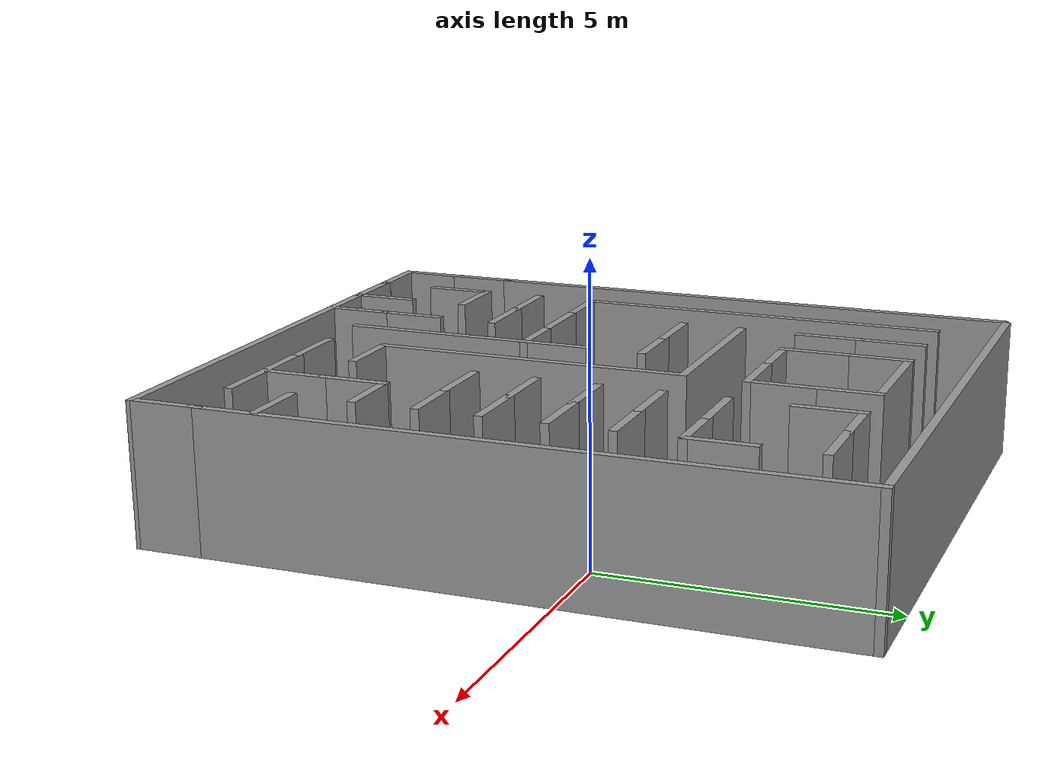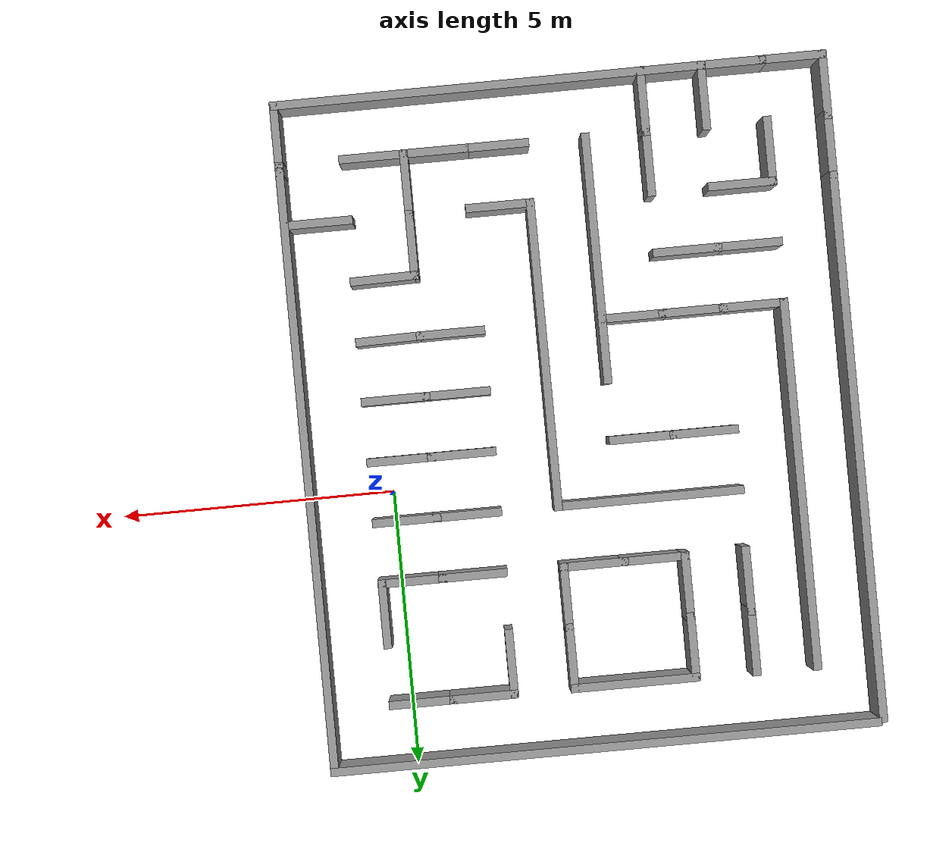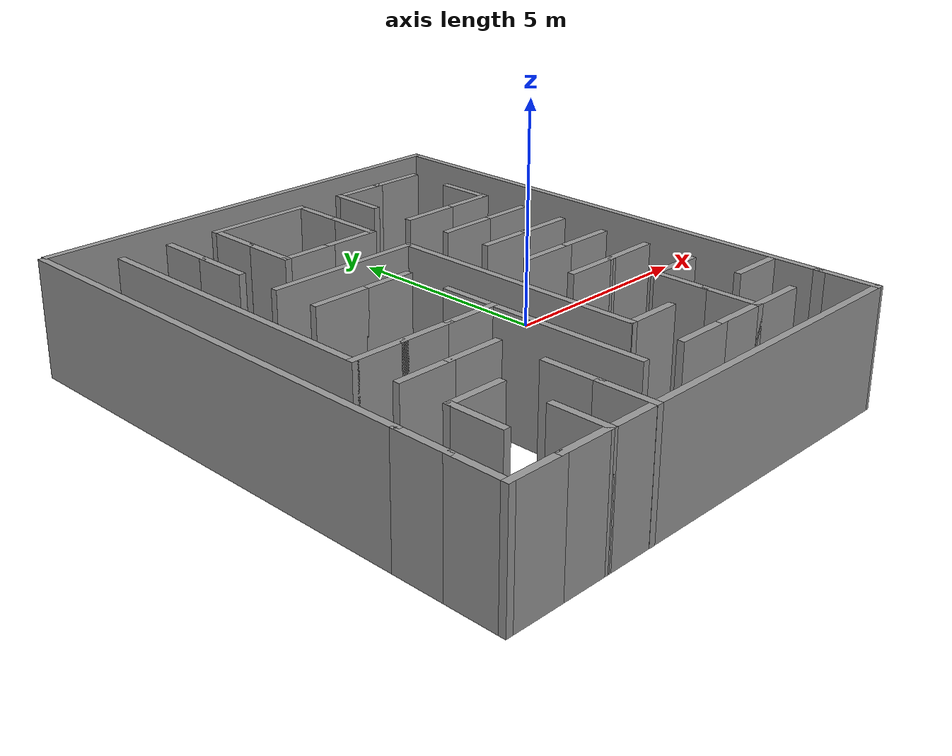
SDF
<?xml version='1.0'?>
<sdf version='1.7'>
  <model name='Pacturtle'>
    <pose>-3.48692 -1.13593 0 0 -0 0</pose>
    <link name='Wall_115'>
      <collision name='Wall_115_Collision'>
        <geometry>
          <box>
            <size>1.25 0.15 2.5</size>
          </box>
        </geometry>
        <pose>0 0 1.25 0 -0 0</pose>
      </collision>
      <visual name='Wall_115_Visual'>
        <pose>0 0 1.25 0 -0 0</pose>
        <geometry>
          <box>
            <size>1.25 0.15 2.5</size>
          </box>
        </geometry>
        <material>
          <script>
            <uri>file://media/materials/scripts/gazebo.material</uri>
            <name>Gazebo/Grey</name>
          </script>
          <ambient>1 1 1 1</ambient>
        </material>
        <meta>
          <layer>0</layer>
        </meta>
      </visual>
      <pose>-1.68082 4.39611 0 0 -0 -1.5708</pose>
    </link>
    <link name='Wall_116'>
      <collision name='Wall_116_Collision'>
        <geometry>
          <box>
            <size>1.25 0.15 2.5</size>
          </box>
        </geometry>
        <pose>0 0 1.25 0 -0 0</pose>
      </collision>
      <visual name='Wall_116_Visual'>
        <pose>0 0 1.25 0 -0 0</pose>
        <geometry>
          <box>
            <size>1.25 0.15 2.5</size>
          </box>
        </geometry>
        <material>
          <script>
            <uri>file://media/materials/scripts/gazebo.material</uri>
            <name>Gazebo/Grey</name>
          </script>
          <ambient>1 1 1 1</ambient>
        </material>
        <meta>
          <layer>0</layer>
        </meta>
      </visual>
      <pose>-1.68082 3.29611 0 0 -0 -1.5708</pose>
    </link>
    <link name='Wall_119'>
      <collision name='Wall_119_Collision'>
        <geometry>
          <box>
            <size>1.25 0.15 2.5</size>
          </box>
        </geometry>
        <pose>0 0 1.25 0 -0 0</pose>
      </collision>
      <visual name='Wall_119_Visual'>
        <pose>0 0 1.25 0 -0 0</pose>
        <geometry>
          <box>
            <size>1.25 0.15 2.5</size>
          </box>
        </geometry>
        <material>
          <script>
            <uri>file://media/materials/scripts/gazebo.material</uri>
            <name>Gazebo/Grey</name>
          </script>
          <ambient>1 1 1 1</ambient>
        </material>
        <meta>
          <layer>0</layer>
        </meta>
      </visual>
      <pose>3.26918 1.64611 0 0 -0 3.14159</pose>
    </link>
    <link name='Wall_120'>
      <collision name='Wall_120_Collision'>
        <geometry>
          <box>
            <size>1.25 0.15 2.5</size>
          </box>
        </geometry>
        <pose>0 0 1.25 0 -0 0</pose>
      </collision>
      <visual name='Wall_120_Visual'>
        <pose>0 0 1.25 0 -0 0</pose>
        <geometry>
          <box>
            <size>1.25 0.15 2.5</size>
          </box>
        </geometry>
        <material>
          <script>
            <uri>file://media/materials/scripts/gazebo.material</uri>
            <name>Gazebo/Grey</name>
          </script>
          <ambient>1 1 1 1</ambient>
        </material>
        <meta>
          <layer>0</layer>
        </meta>
      </visual>
      <pose>2.16918 1.64611 0 0 -0 3.14159</pose>
    </link>
    <link name='Wall_122'>
      <collision name='Wall_122_Collision'>
        <geometry>
          <box>
            <size>1.25 0.15 2.5</size>
          </box>
        </geometry>
        <pose>0 0 1.25 0 -0 0</pose>
      </collision>
      <visual name='Wall_122_Visual'>
        <pose>0 0 1.25 0 -0 0</pose>
        <geometry>
          <box>
            <size>1.25 0.15 2.5</size>
          </box>
        </geometry>
        <material>
          <script>
            <uri>file://media/materials/scripts/gazebo.material</uri>
            <name>Gazebo/Grey</name>
          </script>
          <ambient>1 1 1 1</ambient>
        </material>
        <meta>
          <layer>0</layer>
        </meta>
      </visual>
      <pose>2.16918 0.546111 0 0 -0 0</pose>
    </link>
    <link name='Wall_123'>
      <collision name='Wall_123_Collision'>
        <geometry>
          <box>
            <size>1.25 0.15 2.5</size>
          </box>
        </geometry>
        <pose>0 0 1.25 0 -0 0</pose>
      </collision>
      <visual name='Wall_123_Visual'>
        <pose>0 0 1.25 0 -0 0</pose>
        <geometry>
          <box>
            <size>1.25 0.15 2.5</size>
          </box>
        </geometry>
        <material>
          <script>
            <uri>file://media/materials/scripts/gazebo.material</uri>
            <name>Gazebo/Grey</name>
          </script>
          <ambient>1 1 1 1</ambient>
        </material>
        <meta>
          <layer>0</layer>
        </meta>
      </visual>
      <pose>3.26918 0.546111 0 0 -0 0</pose>
    </link>
    <link name='Wall_128'>
      <collision name='Wall_128_Collision'>
        <geometry>
          <box>
            <size>1.25 0.15 2.5</size>
          </box>
        </geometry>
        <pose>0 0 1.25 0 -0 0</pose>
      </collision>
      <visual name='Wall_128_Visual'>
        <pose>0 0 1.25 0 -0 0</pose>
        <geometry>
          <box>
            <size>1.25 0.15 2.5</size>
          </box>
        </geometry>
        <material>
          <script>
            <uri>file://media/materials/scripts/gazebo.material</uri>
            <name>Gazebo/Grey</name>
          </script>
          <ambient>1 1 1 1</ambient>
        </material>
        <meta>
          <layer>0</layer>
        </meta>
      </visual>
      <pose>3.26918 -0.553889 0 0 -0 3.14159</pose>
    </link>
    <link name='Wall_129'>
      <collision name='Wall_129_Collision'>
        <geometry>
          <box>
            <size>1.25 0.15 2.5</size>
          </box>
        </geometry>
        <pose>0 0 1.25 0 -0 0</pose>
      </collision>
      <visual name='Wall_129_Visual'>
        <pose>0 0 1.25 0 -0 0</pose>
        <geometry>
          <box>
            <size>1.25 0.15 2.5</size>
          </box>
        </geometry>
        <material>
          <script>
            <uri>file://media/materials/scripts/gazebo.material</uri>
            <name>Gazebo/Grey</name>
          </script>
          <ambient>1 1 1 1</ambient>
        </material>
        <meta>
          <layer>0</layer>
        </meta>
      </visual>
      <pose>2.16918 -0.553889 0 0 -0 3.14159</pose>
    </link>
    <link name='Wall_131'>
      <collision name='Wall_131_Collision'>
        <geometry>
          <box>
            <size>1.25 0.15 2.5</size>
          </box>
        </geometry>
        <pose>0 0 1.25 0 -0 0</pose>
      </collision>
      <visual name='Wall_131_Visual'>
        <pose>0 0 1.25 0 -0 0</pose>
        <geometry>
          <box>
            <size>1.25 0.15 2.5</size>
          </box>
        </geometry>
        <material>
          <script>
            <uri>file://media/materials/scripts/gazebo.material</uri>
            <name>Gazebo/Grey</name>
          </script>
          <ambient>1 1 1 1</ambient>
        </material>
        <meta>
          <layer>0</layer>
        </meta>
      </visual>
      <pose>2.16918 -1.65389 0 0 -0 0</pose>
    </link>
    <link name='Wall_132'>
      <collision name='Wall_132_Collision'>
        <geometry>
          <box>
            <size>1.25 0.15 2.5</size>
          </box>
        </geometry>
        <pose>0 0 1.25 0 -0 0</pose>
      </collision>
      <visual name='Wall_132_Visual'>
        <pose>0 0 1.25 0 -0 0</pose>
        <geometry>
          <box>
            <size>1.25 0.15 2.5</size>
          </box>
        </geometry>
        <material>
          <script>
            <uri>file://media/materials/scripts/gazebo.material</uri>
            <name>Gazebo/Grey</name>
          </script>
          <ambient>1 1 1 1</ambient>
        </material>
        <meta>
          <layer>0</layer>
        </meta>
      </visual>
      <pose>3.26918 -1.64519 0 0 -0 0.015809</pose>
    </link>
    <link name='Wall_135'>
      <collision name='Wall_135_Collision'>
        <geometry>
          <box>
            <size>1.25 0.15 2.5</size>
          </box>
        </geometry>
        <pose>0 0 1.25 0 -0 0</pose>
      </collision>
      <visual name='Wall_135_Visual'>
        <pose>0 0 1.25 0 -0 0</pose>
        <geometry>
          <box>
            <size>1.25 0.15 2.5</size>
          </box>
        </geometry>
        <material>
          <script>
            <uri>file://media/materials/scripts/gazebo.material</uri>
            <name>Gazebo/Grey</name>
          </script>
          <ambient>1 1 1 1</ambient>
        </material>
        <meta>
          <layer>0</layer>
        </meta>
      </visual>
      <pose>3.26918 -2.74519 0 0 -0 -3.12578</pose>
    </link>
    <link name='Wall_137'>
      <collision name='Wall_137_Collision'>
        <geometry>
          <box>
            <size>1.25 0.15 2.5</size>
          </box>
        </geometry>
        <pose>0 0 1.25 0 -0 0</pose>
      </collision>
      <visual name='Wall_137_Visual'>
        <pose>0 0 1.25 0 -0 0</pose>
        <geometry>
          <box>
            <size>1.25 0.15 2.5</size>
          </box>
        </geometry>
        <material>
          <script>
            <uri>file://media/materials/scripts/gazebo.material</uri>
            <name>Gazebo/Grey</name>
          </script>
          <ambient>1 1 1 1</ambient>
        </material>
        <meta>
          <layer>0</layer>
        </meta>
      </visual>
      <pose>2.71918 -3.30389 0 0 -0 -1.5708</pose>
    </link>
    <link name='Wall_138'>
      <collision name='Wall_138_Collision'>
        <geometry>
          <box>
            <size>1.25 0.15 2.5</size>
          </box>
        </geometry>
        <pose>0 0 1.25 0 -0 0</pose>
      </collision>
      <visual name='Wall_138_Visual'>
        <pose>0 0 1.25 0 -0 0</pose>
        <geometry>
          <box>
            <size>1.25 0.15 2.5</size>
          </box>
        </geometry>
        <material>
          <script>
            <uri>file://media/materials/scripts/gazebo.material</uri>
            <name>Gazebo/Grey</name>
          </script>
          <ambient>1 1 1 1</ambient>
        </material>
        <meta>
          <layer>0</layer>
        </meta>
      </visual>
      <pose>2.71918 -4.40389 0 0 -0 -1.5708</pose>
    </link>
    <link name='Wall_139'>
      <collision name='Wall_139_Collision'>
        <geometry>
          <box>
            <size>1.25 0.15 2.5</size>
          </box>
        </geometry>
        <pose>0 0 1.25 0 -0 0</pose>
      </collision>
      <visual name='Wall_139_Visual'>
        <pose>0 0 1.25 0 -0 0</pose>
        <geometry>
          <box>
            <size>1.25 0.15 2.5</size>
          </box>
        </geometry>
        <material>
          <script>
            <uri>file://media/materials/scripts/gazebo.material</uri>
            <name>Gazebo/Grey</name>
          </script>
          <ambient>1 1 1 1</ambient>
        </material>
        <meta>
          <layer>0</layer>
        </meta>
      </visual>
      <pose>3.26918 -4.95389 0 0 -0 0</pose>
    </link>
    <link name='Wall_141'>
      <collision name='Wall_141_Collision'>
        <geometry>
          <box>
            <size>1.25 0.15 2.5</size>
          </box>
        </geometry>
        <pose>0 0 1.25 0 -0 0</pose>
      </collision>
      <visual name='Wall_141_Visual'>
        <pose>0 0 1.25 0 -0 0</pose>
        <geometry>
          <box>
            <size>1.25 0.15 2.5</size>
          </box>
        </geometry>
        <material>
          <script>
            <uri>file://media/materials/scripts/gazebo.material</uri>
            <name>Gazebo/Grey</name>
          </script>
          <ambient>1 1 1 1</ambient>
        </material>
        <meta>
          <layer>0</layer>
        </meta>
      </visual>
      <pose>4.36918 -3.85389 0 0 -0 0</pose>
    </link>
    <link name='Wall_143'>
      <collision name='Wall_143_Collision'>
        <geometry>
          <box>
            <size>1.25 0.15 2.5</size>
          </box>
        </geometry>
        <pose>0 0 1.25 0 -0 0</pose>
      </collision>
      <visual name='Wall_143_Visual'>
        <pose>0 0 1.25 0 -0 0</pose>
        <geometry>
          <box>
            <size>1.25 0.15 2.5</size>
          </box>
        </geometry>
        <material>
          <script>
            <uri>file://media/materials/scripts/gazebo.material</uri>
            <name>Gazebo/Grey</name>
          </script>
          <ambient>1 1 1 1</ambient>
        </material>
        <meta>
          <layer>0</layer>
        </meta>
      </visual>
      <pose>2.16918 -4.95389 0 0 -0 3.14159</pose>
    </link>
    <link name='Wall_145'>
      <collision name='Wall_145_Collision'>
        <geometry>
          <box>
            <size>0.25 0.15 2.5</size>
          </box>
        </geometry>
        <pose>0 0 1.25 0 -0 0</pose>
      </collision>
      <visual name='Wall_145_Visual'>
        <pose>0 0 1.25 0 -0 0</pose>
        <geometry>
          <box>
            <size>0.25 0.15 2.5</size>
          </box>
        </geometry>
        <material>
          <script>
            <uri>file://media/materials/scripts/gazebo.material</uri>
            <name>Gazebo/Grey</name>
          </script>
          <ambient>1 1 1 1</ambient>
        </material>
        <meta>
          <layer>0</layer>
        </meta>
      </visual>
      <pose>4.9806 -4.88067 0 0 -0 -1.5708</pose>
    </link>
    <link name='Wall_146'>
      <collision name='Wall_146_Collision'>
        <geometry>
          <box>
            <size>1.25 0.15 2.5</size>
          </box>
        </geometry>
        <pose>0 0 1.25 0 -0 0</pose>
      </collision>
      <visual name='Wall_146_Visual'>
        <pose>0 0 1.25 0 -0 0</pose>
        <geometry>
          <box>
            <size>1.25 0.15 2.5</size>
          </box>
        </geometry>
        <material>
          <script>
            <uri>file://media/materials/scripts/gazebo.material</uri>
            <name>Gazebo/Grey</name>
          </script>
          <ambient>1 1 1 1</ambient>
        </material>
        <meta>
          <layer>0</layer>
        </meta>
      </visual>
      <pose>4.9806 -5.48067 0 0 -0 -1.5708</pose>
    </link>
    <link name='Wall_148'>
      <collision name='Wall_148_Collision'>
        <geometry>
          <box>
            <size>1.25 0.15 2.5</size>
          </box>
        </geometry>
        <pose>0 0 1.25 0 -0 0</pose>
      </collision>
      <visual name='Wall_148_Visual'>
        <pose>0 0 1.25 0 -0 0</pose>
        <geometry>
          <box>
            <size>1.25 0.15 2.5</size>
          </box>
        </geometry>
        <material>
          <script>
            <uri>file://media/materials/scripts/gazebo.material</uri>
            <name>Gazebo/Grey</name>
          </script>
          <ambient>1 1 1 1</ambient>
        </material>
        <meta>
          <layer>0</layer>
        </meta>
      </visual>
      <pose>2.16918 4.94611 0 0 -0 3.14159</pose>
    </link>
    <link name='Wall_149'>
      <collision name='Wall_149_Collision'>
        <geometry>
          <box>
            <size>1.25 0.15 2.5</size>
          </box>
        </geometry>
        <pose>0 0 1.25 0 -0 0</pose>
      </collision>
      <visual name='Wall_149_Visual'>
        <pose>0 0 1.25 0 -0 0</pose>
        <geometry>
          <box>
            <size>1.25 0.15 2.5</size>
          </box>
        </geometry>
        <material>
          <script>
            <uri>file://media/materials/scripts/gazebo.material</uri>
            <name>Gazebo/Grey</name>
          </script>
          <ambient>1 1 1 1</ambient>
        </material>
        <meta>
          <layer>0</layer>
        </meta>
      </visual>
      <pose>1.61918 4.39611 0 0 -0 -1.5708</pose>
    </link>
    <link name='Wall_151'>
      <collision name='Wall_151_Collision'>
        <geometry>
          <box>
            <size>1.25 0.15 2.5</size>
          </box>
        </geometry>
        <pose>0 0 1.25 0 -0 0</pose>
      </collision>
      <visual name='Wall_151_Visual'>
        <pose>0 0 1.25 0 -0 0</pose>
        <geometry>
          <box>
            <size>1.25 0.15 2.5</size>
          </box>
        </geometry>
        <material>
          <script>
            <uri>file://media/materials/scripts/gazebo.material</uri>
            <name>Gazebo/Grey</name>
          </script>
          <ambient>1 1 1 1</ambient>
        </material>
        <meta>
          <layer>0</layer>
        </meta>
      </visual>
      <pose>2.16918 2.74611 0 0 -0 3.14159</pose>
    </link>
    <link name='Wall_154'>
      <collision name='Wall_154_Collision'>
        <geometry>
          <box>
            <size>1.25 0.15 2.5</size>
          </box>
        </geometry>
        <pose>0 0 1.25 0 -0 0</pose>
      </collision>
      <visual name='Wall_154_Visual'>
        <pose>0 0 1.25 0 -0 0</pose>
        <geometry>
          <box>
            <size>1.25 0.15 2.5</size>
          </box>
        </geometry>
        <material>
          <script>
            <uri>file://media/materials/scripts/gazebo.material</uri>
            <name>Gazebo/Grey</name>
          </script>
          <ambient>1 1 1 1</ambient>
        </material>
        <meta>
          <layer>0</layer>
        </meta>
      </visual>
      <pose>0.519179 4.39611 0 0 -0 -1.5708</pose>
    </link>
    <link name='Wall_155'>
      <collision name='Wall_155_Collision'>
        <geometry>
          <box>
            <size>1.25 0.15 2.5</size>
          </box>
        </geometry>
        <pose>0 0 1.25 0 -0 0</pose>
      </collision>
      <visual name='Wall_155_Visual'>
        <pose>0 0 1.25 0 -0 0</pose>
        <geometry>
          <box>
            <size>1.25 0.15 2.5</size>
          </box>
        </geometry>
        <material>
          <script>
            <uri>file://media/materials/scripts/gazebo.material</uri>
            <name>Gazebo/Grey</name>
          </script>
          <ambient>1 1 1 1</ambient>
        </material>
        <meta>
          <layer>0</layer>
        </meta>
      </visual>
      <pose>0.519179 3.29611 0 0 -0 -1.5708</pose>
    </link>
    <link name='Wall_156'>
      <collision name='Wall_156_Collision'>
        <geometry>
          <box>
            <size>1.25 0.15 2.5</size>
          </box>
        </geometry>
        <pose>0 0 1.25 0 -0 0</pose>
      </collision>
      <visual name='Wall_156_Visual'>
        <pose>0 0 1.25 0 -0 0</pose>
        <geometry>
          <box>
            <size>1.25 0.15 2.5</size>
          </box>
        </geometry>
        <material>
          <script>
            <uri>file://media/materials/scripts/gazebo.material</uri>
            <name>Gazebo/Grey</name>
          </script>
          <ambient>1 1 1 1</ambient>
        </material>
        <meta>
          <layer>0</layer>
        </meta>
      </visual>
      <pose>-0.030821 2.74611 0 0 -0 3.14159</pose>
    </link>
    <link name='Wall_157'>
      <collision name='Wall_157_Collision'>
        <geometry>
          <box>
            <size>1.25 0.15 2.5</size>
          </box>
        </geometry>
        <pose>0 0 1.25 0 -0 0</pose>
      </collision>
      <visual name='Wall_157_Visual'>
        <pose>0 0 1.25 0 -0 0</pose>
        <geometry>
          <box>
            <size>1.25 0.15 2.5</size>
          </box>
        </geometry>
        <material>
          <script>
            <uri>file://media/materials/scripts/gazebo.material</uri>
            <name>Gazebo/Grey</name>
          </script>
          <ambient>1 1 1 1</ambient>
        </material>
        <meta>
          <layer>0</layer>
        </meta>
      </visual>
      <pose>-1.13082 2.74611 0 0 -0 3.14159</pose>
    </link>
    <link name='Wall_159'>
      <collision name='Wall_159_Collision'>
        <geometry>
          <box>
            <size>1.25 0.15 2.5</size>
          </box>
        </geometry>
        <pose>0 0 1.25 0 -0 0</pose>
      </collision>
      <visual name='Wall_159_Visual'>
        <pose>0 0 1.25 0 -0 0</pose>
        <geometry>
          <box>
            <size>1.25 0.15 2.5</size>
          </box>
        </geometry>
        <material>
          <script>
            <uri>file://media/materials/scripts/gazebo.material</uri>
            <name>Gazebo/Grey</name>
          </script>
          <ambient>1 1 1 1</ambient>
        </material>
        <meta>
          <layer>0</layer>
        </meta>
      </visual>
      <pose>-2.78082 3.29611 0 0 -0 1.5708</pose>
    </link>
    <link name='Wall_160'>
      <collision name='Wall_160_Collision'>
        <geometry>
          <box>
            <size>1.25 0.15 2.5</size>
          </box>
        </geometry>
        <pose>0 0 1.25 0 -0 0</pose>
      </collision>
      <visual name='Wall_160_Visual'>
        <pose>0 0 1.25 0 -0 0</pose>
        <geometry>
          <box>
            <size>1.25 0.15 2.5</size>
          </box>
        </geometry>
        <material>
          <script>
            <uri>file://media/materials/scripts/gazebo.material</uri>
            <name>Gazebo/Grey</name>
          </script>
          <ambient>1 1 1 1</ambient>
        </material>
        <meta>
          <layer>0</layer>
        </meta>
      </visual>
      <pose>-2.78082 4.39611 0 0 -0 1.5708</pose>
    </link>
    <link name='Wall_162'>
      <collision name='Wall_162_Collision'>
        <geometry>
          <box>
            <size>2.35 0.15 2.5</size>
          </box>
        </geometry>
        <pose>0 0 1.25 0 -0 0</pose>
      </collision>
      <visual name='Wall_162_Visual'>
        <pose>0 0 1.25 0 -0 0</pose>
        <geometry>
          <box>
            <size>2.35 0.15 2.5</size>
          </box>
        </geometry>
        <material>
          <script>
            <uri>file://media/materials/scripts/gazebo.material</uri>
            <name>Gazebo/Grey</name>
          </script>
          <ambient>1 1 1 1</ambient>
        </material>
        <meta>
          <layer>0</layer>
        </meta>
      </visual>
      <pose>-0.580821 4.94611 0 0 -0 0</pose>
    </link>
    <link name='Wall_169'>
      <collision name='Wall_169_Collision'>
        <geometry>
          <box>
            <size>5.6615 0.15 2.5</size>
          </box>
        </geometry>
        <pose>0 0 1.25 0 -0 0</pose>
      </collision>
      <visual name='Wall_169_Visual'>
        <pose>0 0 1.25 0 -0 0</pose>
        <geometry>
          <box>
            <size>5.6615 0.15 2.5</size>
          </box>
        </geometry>
        <material>
          <script>
            <uri>file://media/materials/scripts/gazebo.material</uri>
            <name>Gazebo/Grey</name>
          </script>
          <ambient>1 1 1 1</ambient>
        </material>
        <meta>
          <layer>0</layer>
        </meta>
      </visual>
      <pose>0.519179 -1.10964 0 0 -0 -1.5708</pose>
    </link>
    <link name='Wall_174'>
      <collision name='Wall_174_Collision'>
        <geometry>
          <box>
            <size>1.25 0.15 2.5</size>
          </box>
        </geometry>
        <pose>0 0 1.25 0 -0 0</pose>
      </collision>
      <visual name='Wall_174_Visual'>
        <pose>0 0 1.25 0 -0 0</pose>
        <geometry>
          <box>
            <size>1.25 0.15 2.5</size>
          </box>
        </geometry>
        <material>
          <script>
            <uri>file://media/materials/scripts/gazebo.material</uri>
            <name>Gazebo/Grey</name>
          </script>
          <ambient>1 1 1 1</ambient>
        </material>
        <meta>
          <layer>0</layer>
        </meta>
      </visual>
      <pose>1.06918 -3.86539 0 0 -0 0</pose>
    </link>
    <link name='Wall_178'>
      <collision name='Wall_178_Collision'>
        <geometry>
          <box>
            <size>3.45 0.15 2.5</size>
          </box>
        </geometry>
        <pose>0 0 1.25 0 -0 0</pose>
      </collision>
      <visual name='Wall_178_Visual'>
        <pose>0 0 1.25 0 -0 0</pose>
        <geometry>
          <box>
            <size>3.45 0.15 2.5</size>
          </box>
        </geometry>
        <material>
          <script>
            <uri>file://media/materials/scripts/gazebo.material</uri>
            <name>Gazebo/Grey</name>
          </script>
          <ambient>1 1 1 1</ambient>
        </material>
        <meta>
          <layer>0</layer>
        </meta>
      </visual>
      <pose>-1.13082 1.64611 0 0 -0 0</pose>
    </link>
    <link name='Wall_181'>
      <collision name='Wall_181_Collision'>
        <geometry>
          <box>
            <size>1.25 0.15 2.5</size>
          </box>
        </geometry>
        <pose>0 0 1.25 0 -0 0</pose>
      </collision>
      <visual name='Wall_181_Visual'>
        <pose>0 0 1.25 0 -0 0</pose>
        <geometry>
          <box>
            <size>1.25 0.15 2.5</size>
          </box>
        </geometry>
        <material>
          <script>
            <uri>file://media/materials/scripts/gazebo.material</uri>
            <name>Gazebo/Grey</name>
          </script>
          <ambient>1 1 1 1</ambient>
        </material>
        <meta>
          <layer>0</layer>
        </meta>
      </visual>
      <pose>-2.23082 0.546111 0 0 -0 0</pose>
    </link>
    <link name='Wall_182'>
      <collision name='Wall_182_Collision'>
        <geometry>
          <box>
            <size>1.25 0.15 2.5</size>
          </box>
        </geometry>
        <pose>0 0 1.25 0 -0 0</pose>
      </collision>
      <visual name='Wall_182_Visual'>
        <pose>0 0 1.25 0 -0 0</pose>
        <geometry>
          <box>
            <size>1.25 0.15 2.5</size>
          </box>
        </geometry>
        <material>
          <script>
            <uri>file://media/materials/scripts/gazebo.material</uri>
            <name>Gazebo/Grey</name>
          </script>
          <ambient>1 1 1 1</ambient>
        </material>
        <meta>
          <layer>0</layer>
        </meta>
      </visual>
      <pose>-1.13082 0.546111 0 0 -0 0</pose>
    </link>
    <link name='Wall_185'>
      <collision name='Wall_185_Collision'>
        <geometry>
          <box>
            <size>1.25 0.15 2.5</size>
          </box>
        </geometry>
        <pose>0 0 1.25 0 -0 0</pose>
      </collision>
      <visual name='Wall_185_Visual'>
        <pose>0 0 1.25 0 -0 0</pose>
        <geometry>
          <box>
            <size>1.25 0.15 2.5</size>
          </box>
        </geometry>
        <material>
          <script>
            <uri>file://media/materials/scripts/gazebo.material</uri>
            <name>Gazebo/Grey</name>
          </script>
          <ambient>1 1 1 1</ambient>
        </material>
        <meta>
          <layer>0</layer>
        </meta>
      </visual>
      <pose>1.06918 -4.95389 0 0 -0 3.14159</pose>
    </link>
    <link name='Wall_187'>
      <collision name='Wall_187_Collision'>
        <geometry>
          <box>
            <size>4.55 0.15 2.5</size>
          </box>
        </geometry>
        <pose>0 0 1.25 0 -0 0</pose>
      </collision>
      <visual name='Wall_187_Visual'>
        <pose>0 0 1.25 0 -0 0</pose>
        <geometry>
          <box>
            <size>4.55 0.15 2.5</size>
          </box>
        </geometry>
        <material>
          <script>
            <uri>file://media/materials/scripts/gazebo.material</uri>
            <name>Gazebo/Grey</name>
          </script>
          <ambient>1 1 1 1</ambient>
        </material>
        <meta>
          <layer>0</layer>
        </meta>
      </visual>
      <pose>-0.580821 -2.75389 0 0 -0 1.5708</pose>
    </link>
    <link name='Wall_198'>
      <collision name='Wall_198_Collision'>
        <geometry>
          <box>
            <size>1.25 0.15 2.5</size>
          </box>
        </geometry>
        <pose>0 0 1.25 0 -0 0</pose>
      </collision>
      <visual name='Wall_198_Visual'>
        <pose>0 0 1.25 0 -0 0</pose>
        <geometry>
          <box>
            <size>1.25 0.15 2.5</size>
          </box>
        </geometry>
        <material>
          <script>
            <uri>file://media/materials/scripts/gazebo.material</uri>
            <name>Gazebo/Grey</name>
          </script>
          <ambient>1 1 1 1</ambient>
        </material>
        <meta>
          <layer>0</layer>
        </meta>
      </visual>
      <pose>-3.33082 -1.65389 0 0 -0 0</pose>
    </link>
    <link name='Wall_199'>
      <collision name='Wall_199_Collision'>
        <geometry>
          <box>
            <size>1.25 0.15 2.5</size>
          </box>
        </geometry>
        <pose>0 0 1.25 0 -0 0</pose>
      </collision>
      <visual name='Wall_199_Visual'>
        <pose>0 0 1.25 0 -0 0</pose>
        <geometry>
          <box>
            <size>1.25 0.15 2.5</size>
          </box>
        </geometry>
        <material>
          <script>
            <uri>file://media/materials/scripts/gazebo.material</uri>
            <name>Gazebo/Grey</name>
          </script>
          <ambient>1 1 1 1</ambient>
        </material>
        <meta>
          <layer>0</layer>
        </meta>
      </visual>
      <pose>-2.23082 -1.65389 0 0 -0 0</pose>
    </link>
    <link name='Wall_200'>
      <collision name='Wall_200_Collision'>
        <geometry>
          <box>
            <size>1.25 0.15 2.5</size>
          </box>
        </geometry>
        <pose>0 0 1.25 0 -0 0</pose>
      </collision>
      <visual name='Wall_200_Visual'>
        <pose>0 0 1.25 0 -0 0</pose>
        <geometry>
          <box>
            <size>1.25 0.15 2.5</size>
          </box>
        </geometry>
        <material>
          <script>
            <uri>file://media/materials/scripts/gazebo.material</uri>
            <name>Gazebo/Grey</name>
          </script>
          <ambient>1 1 1 1</ambient>
        </material>
        <meta>
          <layer>0</layer>
        </meta>
      </visual>
      <pose>-1.13082 -1.65389 0 0 -0 0</pose>
    </link>
    <link name='Wall_203'>
      <collision name='Wall_203_Collision'>
        <geometry>
          <box>
            <size>1.25 0.15 2.5</size>
          </box>
        </geometry>
        <pose>0 0 1.25 0 -0 0</pose>
      </collision>
      <visual name='Wall_203_Visual'>
        <pose>0 0 1.25 0 -0 0</pose>
        <geometry>
          <box>
            <size>1.25 0.15 2.5</size>
          </box>
        </geometry>
        <material>
          <script>
            <uri>file://media/materials/scripts/gazebo.material</uri>
            <name>Gazebo/Grey</name>
          </script>
          <ambient>1 1 1 1</ambient>
        </material>
        <meta>
          <layer>0</layer>
        </meta>
      </visual>
      <pose>-1.68082 -5.50389 0 0 -0 -1.5708</pose>
    </link>
    <link name='Wall_205'>
      <collision name='Wall_205_Collision'>
        <geometry>
          <box>
            <size>1.25 0.15 2.5</size>
          </box>
        </geometry>
        <pose>0 0 1.25 0 -0 0</pose>
      </collision>
      <visual name='Wall_205_Visual'>
        <pose>0 0 1.25 0 -0 0</pose>
        <geometry>
          <box>
            <size>1.25 0.15 2.5</size>
          </box>
        </geometry>
        <material>
          <script>
            <uri>file://media/materials/scripts/gazebo.material</uri>
            <name>Gazebo/Grey</name>
          </script>
          <ambient>1 1 1 1</ambient>
        </material>
        <meta>
          <layer>0</layer>
        </meta>
      </visual>
      <pose>-1.68082 -4.40389 0 0 -0 1.5708</pose>
    </link>
    <link name='Wall_208'>
      <collision name='Wall_208_Collision'>
        <geometry>
          <box>
            <size>1.25 0.15 2.5</size>
          </box>
        </geometry>
        <pose>0 0 1.25 0 -0 0</pose>
      </collision>
      <visual name='Wall_208_Visual'>
        <pose>0 0 1.25 0 -0 0</pose>
        <geometry>
          <box>
            <size>1.25 0.15 2.5</size>
          </box>
        </geometry>
        <material>
          <script>
            <uri>file://media/materials/scripts/gazebo.material</uri>
            <name>Gazebo/Grey</name>
          </script>
          <ambient>1 1 1 1</ambient>
        </material>
        <meta>
          <layer>0</layer>
        </meta>
      </visual>
      <pose>-3.33082 -3.85389 0 0 -0 3.14159</pose>
    </link>
    <link name='Wall_209'>
      <collision name='Wall_209_Collision'>
        <geometry>
          <box>
            <size>1.25 0.15 2.5</size>
          </box>
        </geometry>
        <pose>0 0 1.25 0 -0 0</pose>
      </collision>
      <visual name='Wall_209_Visual'>
        <pose>0 0 1.25 0 -0 0</pose>
        <geometry>
          <box>
            <size>1.25 0.15 2.5</size>
          </box>
        </geometry>
        <material>
          <script>
            <uri>file://media/materials/scripts/gazebo.material</uri>
            <name>Gazebo/Grey</name>
          </script>
          <ambient>1 1 1 1</ambient>
        </material>
        <meta>
          <layer>0</layer>
        </meta>
      </visual>
      <pose>-3.88082 -4.40389 0 0 -0 -1.5708</pose>
    </link>
    <link name='Wall_21'>
      <collision name='Wall_21_Collision'>
        <geometry>
          <box>
            <size>10 0.15 2.5</size>
          </box>
        </geometry>
        <pose>0 0 1.25 0 -0 0</pose>
      </collision>
      <visual name='Wall_21_Visual'>
        <pose>0 0 1.25 0 -0 0</pose>
        <geometry>
          <box>
            <size>10 0.15 2.5</size>
          </box>
        </geometry>
        <material>
          <script>
            <uri>file://media/materials/scripts/gazebo.material</uri>
            <name>Gazebo/Grey</name>
          </script>
          <ambient>1 1 1 1</ambient>
        </material>
        <meta>
          <layer>0</layer>
        </meta>
      </visual>
      <pose>0.055597 6.05411 0 0 -0 3.14159</pose>
    </link>
    <link name='Wall_211'>
      <collision name='Wall_211_Collision'>
        <geometry>
          <box>
            <size>1.25 0.15 2.5</size>
          </box>
        </geometry>
        <pose>0 0 1.25 0 -0 0</pose>
      </collision>
      <visual name='Wall_211_Visual'>
        <pose>0 0 1.25 0 -0 0</pose>
        <geometry>
          <box>
            <size>1.25 0.15 2.5</size>
          </box>
        </geometry>
        <material>
          <script>
            <uri>file://media/materials/scripts/gazebo.material</uri>
            <name>Gazebo/Grey</name>
          </script>
          <ambient>1 1 1 1</ambient>
        </material>
        <meta>
          <layer>0</layer>
        </meta>
      </visual>
      <pose>-3.33082 -6.05389 0 0 -0 0</pose>
    </link>
    <link name='Wall_212'>
      <collision name='Wall_212_Collision'>
        <geometry>
          <box>
            <size>1.25 0.15 2.5</size>
          </box>
        </geometry>
        <pose>0 0 1.25 0 -0 0</pose>
      </collision>
      <visual name='Wall_212_Visual'>
        <pose>0 0 1.25 0 -0 0</pose>
        <geometry>
          <box>
            <size>1.25 0.15 2.5</size>
          </box>
        </geometry>
        <material>
          <script>
            <uri>file://media/materials/scripts/gazebo.material</uri>
            <name>Gazebo/Grey</name>
          </script>
          <ambient>1 1 1 1</ambient>
        </material>
        <meta>
          <layer>0</layer>
        </meta>
      </visual>
      <pose>-2.78082 -5.50389 0 0 -0 1.5708</pose>
    </link>
    <link name='Wall_214'>
      <collision name='Wall_214_Collision'>
        <geometry>
          <box>
            <size>7.91145 0.15 2.5</size>
          </box>
        </geometry>
        <pose>0 0 1.25 0 -0 0</pose>
      </collision>
      <visual name='Wall_214_Visual'>
        <pose>0 0 1.25 0 -0 0</pose>
        <geometry>
          <box>
            <size>7.91145 0.15 2.5</size>
          </box>
        </geometry>
        <material>
          <script>
            <uri>file://media/materials/scripts/gazebo.material</uri>
            <name>Gazebo/Grey</name>
          </script>
          <ambient>1 1 1 1</ambient>
        </material>
        <meta>
          <layer>0</layer>
        </meta>
      </visual>
      <pose>1.09989 -6.04228 0 0 -0 0.002992</pose>
    </link>
    <link name='Wall_220'>
      <collision name='Wall_220_Collision'>
        <geometry>
          <box>
            <size>1.25 0.15 2.5</size>
          </box>
        </geometry>
        <pose>0 0 1.25 0 -0 0</pose>
      </collision>
      <visual name='Wall_220_Visual'>
        <pose>0 0 1.25 0 -0 0</pose>
        <geometry>
          <box>
            <size>1.25 0.15 2.5</size>
          </box>
        </geometry>
        <material>
          <script>
            <uri>file://media/materials/scripts/gazebo.material</uri>
            <name>Gazebo/Grey</name>
          </script>
          <ambient>1 1 1 1</ambient>
        </material>
        <meta>
          <layer>0</layer>
        </meta>
      </visual>
      <pose>-2.23082 -2.75389 0 0 -0 3.14159</pose>
    </link>
    <link name='Wall_221'>
      <collision name='Wall_221_Collision'>
        <geometry>
          <box>
            <size>1.25 0.15 2.5</size>
          </box>
        </geometry>
        <pose>0 0 1.25 0 -0 0</pose>
      </collision>
      <visual name='Wall_221_Visual'>
        <pose>0 0 1.25 0 -0 0</pose>
        <geometry>
          <box>
            <size>1.25 0.15 2.5</size>
          </box>
        </geometry>
        <material>
          <script>
            <uri>file://media/materials/scripts/gazebo.material</uri>
            <name>Gazebo/Grey</name>
          </script>
          <ambient>1 1 1 1</ambient>
        </material>
        <meta>
          <layer>0</layer>
        </meta>
      </visual>
      <pose>-3.33082 -2.75389 0 0 -0 3.14159</pose>
    </link>
    <link name='Wall_223'>
      <collision name='Wall_223_Collision'>
        <geometry>
          <box>
            <size>1.25 0.15 2.5</size>
          </box>
        </geometry>
        <pose>0 0 1.25 0 -0 0</pose>
      </collision>
      <visual name='Wall_223_Visual'>
        <pose>0 0 1.25 0 -0 0</pose>
        <geometry>
          <box>
            <size>1.25 0.15 2.5</size>
          </box>
        </geometry>
        <material>
          <script>
            <uri>file://media/materials/scripts/gazebo.material</uri>
            <name>Gazebo/Grey</name>
          </script>
          <ambient>1 1 1 1</ambient>
        </material>
        <meta>
          <layer>0</layer>
        </meta>
      </visual>
      <pose>-4.43082 -6.05389 0 0 -0 3.14159</pose>
    </link>
    <link name='Wall_232'>
      <collision name='Wall_232_Collision'>
        <geometry>
          <box>
            <size>1.25 0.15 2.5</size>
          </box>
        </geometry>
        <pose>0 0 1.25 0 -0 0</pose>
      </collision>
      <visual name='Wall_232_Visual'>
        <pose>0 0 1.25 0 -0 0</pose>
        <geometry>
          <box>
            <size>1.25 0.15 2.5</size>
          </box>
        </geometry>
        <material>
          <script>
            <uri>file://media/materials/scripts/gazebo.material</uri>
            <name>Gazebo/Grey</name>
          </script>
          <ambient>1 1 1 1</ambient>
        </material>
        <meta>
          <layer>0</layer>
        </meta>
      </visual>
      <pose>-4.98082 -5.50389 0 0 -0 1.5708</pose>
    </link>
    <link name='Wall_236'>
      <collision name='Wall_236_Collision'>
        <geometry>
          <box>
            <size>1.25 0.15 2.5</size>
          </box>
        </geometry>
        <pose>0 0 1.25 0 -0 0</pose>
      </collision>
      <visual name='Wall_236_Visual'>
        <pose>0 0 1.25 0 -0 0</pose>
        <geometry>
          <box>
            <size>1.25 0.15 2.5</size>
          </box>
        </geometry>
        <material>
          <script>
            <uri>file://media/materials/scripts/gazebo.material</uri>
            <name>Gazebo/Grey</name>
          </script>
          <ambient>1 1 1 1</ambient>
        </material>
        <meta>
          <layer>0</layer>
        </meta>
      </visual>
      <pose>-4.98082 -4.40389 0 0 -0 1.5708</pose>
    </link>
    <link name='Wall_239'>
      <collision name='Wall_239_Collision'>
        <geometry>
          <box>
            <size>10 0.15 2.5</size>
          </box>
        </geometry>
        <pose>0 0 1.25 0 -0 0</pose>
      </collision>
      <visual name='Wall_239_Visual'>
        <pose>0 0 1.25 0 -0 0</pose>
        <geometry>
          <box>
            <size>10 0.15 2.5</size>
          </box>
        </geometry>
        <material>
          <script>
            <uri>file://media/materials/scripts/gazebo.material</uri>
            <name>Gazebo/Grey</name>
          </script>
          <ambient>1 1 1 1</ambient>
        </material>
        <meta>
          <layer>0</layer>
        </meta>
      </visual>
      <pose>-4.98082 1.07111 0 0 -0 1.5708</pose>
    </link>
    <link name='Wall_242'>
      <collision name='Wall_242_Collision'>
        <geometry>
          <box>
            <size>6.75 0.15 2.5</size>
          </box>
        </geometry>
        <pose>0 0 1.25 0 -0 0</pose>
      </collision>
      <visual name='Wall_242_Visual'>
        <pose>0 0 1.25 0 -0 0</pose>
        <geometry>
          <box>
            <size>6.75 0.15 2.5</size>
          </box>
        </geometry>
        <material>
          <script>
            <uri>file://media/materials/scripts/gazebo.material</uri>
            <name>Gazebo/Grey</name>
          </script>
          <ambient>1 1 1 1</ambient>
        </material>
        <meta>
          <layer>0</layer>
        </meta>
      </visual>
      <pose>-3.88082 1.64611 0 0 -0 -1.5708</pose>
    </link>
    <link name='Wall_25'>
      <collision name='Wall_25_Collision'>
        <geometry>
          <box>
            <size>11.0348 0.15 2.5</size>
          </box>
        </geometry>
        <pose>0 0 1.25 0 -0 0</pose>
      </collision>
      <visual name='Wall_25_Visual'>
        <pose>0 0 1.25 0 -0 0</pose>
        <geometry>
          <box>
            <size>11.0348 0.15 2.5</size>
          </box>
        </geometry>
        <material>
          <script>
            <uri>file://media/materials/scripts/gazebo.material</uri>
            <name>Gazebo/Grey</name>
          </script>
          <ambient>1 1 1 1</ambient>
        </material>
        <meta>
          <layer>0</layer>
        </meta>
      </visual>
      <pose>4.9806 0.611721 0 0 -0 1.5708</pose>
    </link>
    <link name='Wall_93'>
      <collision name='Wall_93_Collision'>
        <geometry>
          <box>
            <size>1.25 0.15 2.5</size>
          </box>
        </geometry>
        <pose>0 0 1.25 0 -0 0</pose>
      </collision>
      <visual name='Wall_93_Visual'>
        <pose>0 0 1.25 0 -0 0</pose>
        <geometry>
          <box>
            <size>1.25 0.15 2.5</size>
          </box>
        </geometry>
        <material>
          <script>
            <uri>file://media/materials/scripts/gazebo.material</uri>
            <name>Gazebo/Grey</name>
          </script>
          <ambient>1 1 1 1</ambient>
        </material>
        <meta>
          <layer>0</layer>
        </meta>
      </visual>
      <pose>3.81918 3.29611 0 0 -0 -1.5708</pose>
    </link>
    <link name='Wall_95'>
      <collision name='Wall_95_Collision'>
        <geometry>
          <box>
            <size>1.25 0.15 2.5</size>
          </box>
        </geometry>
        <pose>0 0 1.25 0 -0 0</pose>
      </collision>
      <visual name='Wall_95_Visual'>
        <pose>0 0 1.25 0 -0 0</pose>
        <geometry>
          <box>
            <size>1.25 0.15 2.5</size>
          </box>
        </geometry>
        <material>
          <script>
            <uri>file://media/materials/scripts/gazebo.material</uri>
            <name>Gazebo/Grey</name>
          </script>
          <ambient>1 1 1 1</ambient>
        </material>
        <meta>
          <layer>0</layer>
        </meta>
      </visual>
      <pose>3.26918 4.94611 0 0 -0 3.14159</pose>
    </link>
    <link name='Wall_98'>
      <collision name='Wall_98_Collision'>
        <geometry>
          <box>
            <size>1.25 0.15 2.5</size>
          </box>
        </geometry>
        <pose>0 0 1.25 0 -0 0</pose>
      </collision>
      <visual name='Wall_98_Visual'>
        <pose>0 0 1.25 0 -0 0</pose>
        <geometry>
          <box>
            <size>1.25 0.15 2.5</size>
          </box>
        </geometry>
        <material>
          <script>
            <uri>file://media/materials/scripts/gazebo.material</uri>
            <name>Gazebo/Grey</name>
          </script>
          <ambient>1 1 1 1</ambient>
        </material>
        <meta>
          <layer>0</layer>
        </meta>
      </visual>
      <pose>3.26918 2.74611 0 0 -0 3.14159</pose>
    </link>
    <static>1</static>
  </model>
</sdf>
